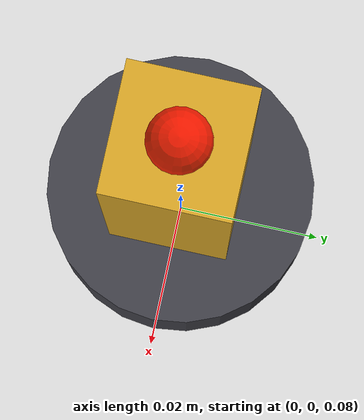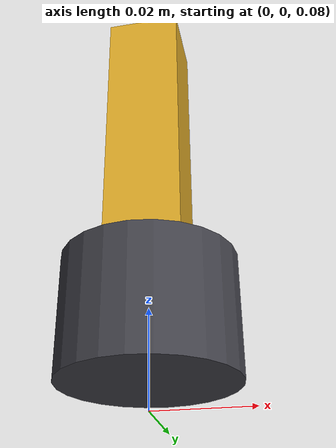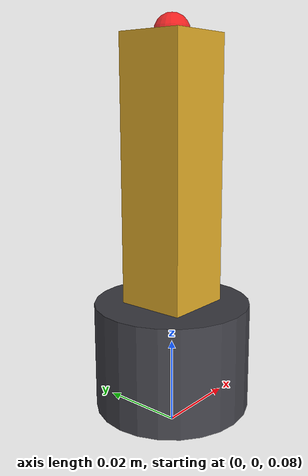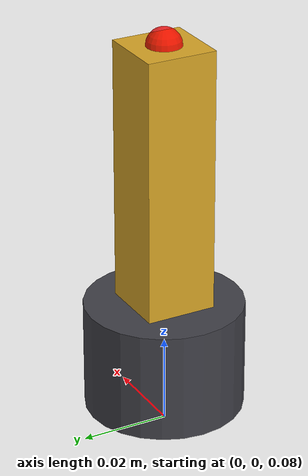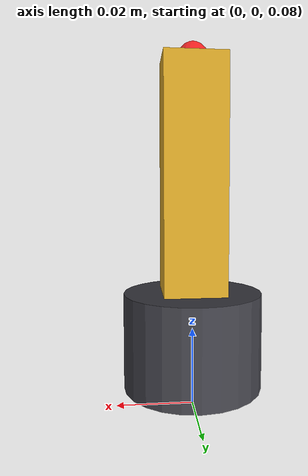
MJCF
<mujoco model="robustlearn fixed insertion peg">
  <worldbody>
    <frame name="tool_mount">
      <body
        name="peg_tool"
        pos="0 0 0.085"
      >

        <geom
          name="tool_adapter_visual"
          type="cylinder"
          pos="0 0 0.0125"
          size="0.018 0.0125"
          rgba="0.25 0.25 0.28 1"
          contype="0"
          conaffinity="0"
          group="2"
        />

        <geom
          name="peg_visual"
          type="box"
          pos="0 0 0.055"
          size="0.008 0.008 0.03"
          rgba="0.85 0.65 0.15 1"
          contype="0"
          conaffinity="0"
          group="2"
        />

        <geom
          name="peg_collision"
          type="box"
          pos="0 0 0.055"
          size="0.008 0.008 0.03"
          group="3"
        />

        <site
          name="panda_wrist_ft"
          pos="0 0 0"
          type="sphere"
          size="0.003"
          rgba="0 0 0 0"
        />

        <site
          name="peg_tip"
          pos="0 0 0.085"
          type="sphere"
          size="0.004"
          rgba="1 0 0 0.8"
        />
      </body>
    </frame>
  </worldbody>
</mujoco>
